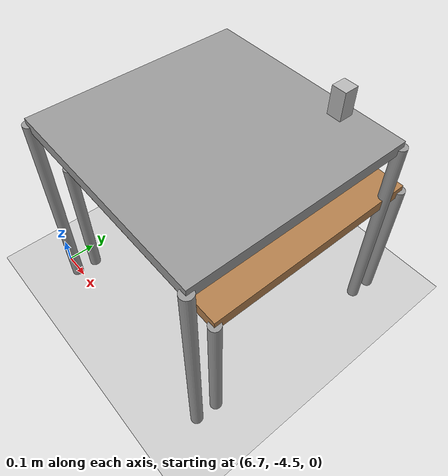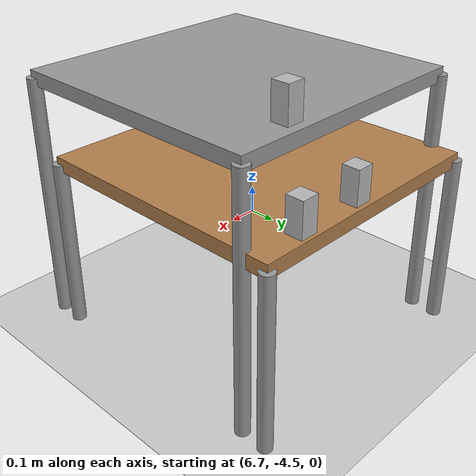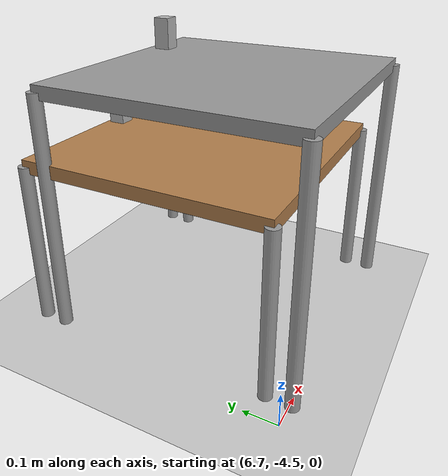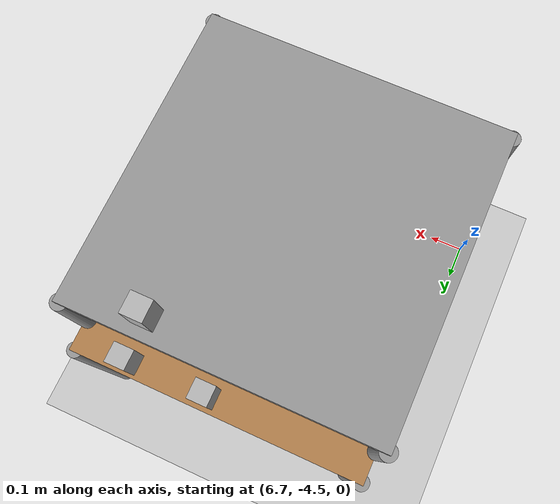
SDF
<sdf version="1.6">
 <world name="default">
  <model name="ground_plane">
   <static>1</static>
   <link name="link">
    <collision name="collision">
     <geometry><plane><normal>0 0 1</normal><size>100 100</size></plane></geometry>
     <surface>
      <contact><collide_bitmask>65535</collide_bitmask></contact>
      <friction><ode><mu>100</mu><mu2>50</mu2></ode></friction>
     </surface>
    </collision>
    <visual name="visual">
     <cast_shadows>0</cast_shadows>
     <geometry><plane><normal>0 0 1</normal><size>100 100</size></plane></geometry>
     <material>
      <script><uri>file://media/materials/scripts/gazebo.material</uri><name>Gazebo/Grey</name></script>
     </material>
    </visual>
   </link>
  </model>
  <model name="table_clone">
   <static>1</static>
   <link name="link">
    <collision name="surface">
     <pose>0 0 0.5 0 -0 0</pose>
     <geometry><box><size>0.75 0.75 0.04</size></box></geometry>
    </collision>
    <visual name="visual1">
     <pose>0 0 0.5 0 -0 0</pose>
     <geometry><box><size>0.75 0.75 0.04</size></box></geometry>
     <material>
      <script><uri>file://media/materials/scripts/gazebo.material</uri><name>Gazebo/Wood</name></script>
     </material>
    </visual>
    <collision name="front_left_leg">
     <pose>0.37 0.37 0.25 0 -0 0</pose>
     <geometry><cylinder><radius>0.02</radius><length>0.5</length></cylinder></geometry>
    </collision>
    <visual name="front_left_leg">
     <pose>0.37 0.37 0.25 0 -0 0</pose>
     <geometry><cylinder><radius>0.02</radius><length>0.5</length></cylinder></geometry>
     <material>
      <script><uri>file://media/materials/scripts/gazebo.material</uri><name>Gazebo/Grey</name></script>
     </material>
    </visual>
    <collision name="front_right_leg">
     <pose>0.37 -0.37 0.25 0 -0 0</pose>
     <geometry><cylinder><radius>0.02</radius><length>0.5</length></cylinder></geometry>
    </collision>
    <visual name="front_right_leg">
     <pose>0.37 -0.37 0.25 0 -0 0</pose>
     <geometry><cylinder><radius>0.02</radius><length>0.5</length></cylinder></geometry>
     <material>
      <script><uri>file://media/materials/scripts/gazebo.material</uri><name>Gazebo/Grey</name></script>
     </material>
    </visual>
    <collision name="back_right_leg">
     <pose>-0.37 -0.37 0.25 0 -0 0</pose>
     <geometry><cylinder><radius>0.02</radius><length>0.5</length></cylinder></geometry>
    </collision>
    <visual name="back_right_leg">
     <pose>-0.37 -0.37 0.25 0 -0 0</pose>
     <geometry><cylinder><radius>0.02</radius><length>0.5</length></cylinder></geometry>
     <material>
      <script><uri>file://media/materials/scripts/gazebo.material</uri><name>Gazebo/Grey</name></script>
     </material>
    </visual>
    <collision name="back_left_leg">
     <pose>-0.37 0.37 0.25 0 -0 0</pose>
     <geometry><cylinder><radius>0.02</radius><length>0.5</length></cylinder></geometry>
    </collision>
    <visual name="back_left_leg">
     <pose>-0.37 0.37 0.25 0 -0 0</pose>
     <geometry><cylinder><radius>0.02</radius><length>0.5</length></cylinder></geometry>
     <material>
      <script><uri>file://media/materials/scripts/gazebo.material</uri><name>Gazebo/Grey</name></script>
     </material>
    </visual>
    <velocity_decay><linear>0</linear><angular>0</angular></velocity_decay>
   </link>
   <pose>7.14247 -4.06144 0 0 -0 0</pose>
  </model>
  <model name="aruco_cube_0">
   <static>0</static>
   <link name="link">
    <inertial>
     <mass>0.05</mass>
     <inertia>
      <ixx>5.2083e-05</ixx>
      <ixy>0</ixy>
      <ixz>0</ixz>
      <iyy>5.2083e-05</iyy>
      <iyz>0</iyz>
      <izz>2.0833e-05</izz>
     </inertia>
    </inertial>
    <collision name="colision">
     <geometry><box><size>0.05 0.05 0.1</size></box></geometry>
     <surface>
      <friction><ode><mu>30</mu><mu2>30</mu2><fdir1>0 0 0</fdir1></ode></friction>
      <contact><ode><kp>1e+06</kp><kd>100</kd><min_depth>0.0025</min_depth><max_vel>1</max_vel></ode></contact>
     </surface>
    </collision>
    <visual name="visual1">
     <geometry>
      <mesh><uri>model://aruco_cube_2/meshes/aruco_cube_5cm.dae</uri><scale>1 1 2</scale></mesh>
     </geometry>
    </visual>
    <velocity_decay><linear>0</linear><angular>0</angular></velocity_decay>
   </link>
   <pose>7.32098 -3.81338 0.7875 0 -0 7e-06</pose>
  </model>
  <model name="aruco_cube_4">
   <static>0</static>
   <link name="link">
    <inertial>
     <mass>0.05</mass>
     <inertia>
      <ixx>5.2083e-05</ixx>
      <ixy>0</ixy>
      <ixz>0</ixz>
      <iyy>5.2083e-05</iyy>
      <iyz>0</iyz>
      <izz>2.0833e-05</izz>
     </inertia>
    </inertial>
    <collision name="colision">
     <geometry><box><size>0.05 0.05 0.1</size></box></geometry>
     <surface>
      <friction><ode><mu>30</mu><mu2>30</mu2><fdir1>0 0 0</fdir1></ode></friction>
      <contact><ode><kp>1e+06</kp><kd>100</kd><min_depth>0.0025</min_depth><max_vel>1</max_vel></ode></contact>
     </surface>
    </collision>
    <visual name="visual1">
     <geometry>
      <mesh><uri>model://aruco_cube_5/meshes/aruco_cube_5cm.dae</uri><scale>1 1 2</scale></mesh>
     </geometry>
    </visual>
    <velocity_decay><linear>0</linear><angular>0</angular></velocity_decay>
   </link>
   <pose>7.17401 -3.72321 0.5675 0 -0 0</pose>
  </model>
  <model name="aruco_cube_3">
   <static>0</static>
   <link name="link">
    <inertial>
     <mass>0.05</mass>
     <inertia>
      <ixx>5.2083e-05</ixx>
      <ixy>0</ixy>
      <ixz>0</ixz>
      <iyy>5.2083e-05</iyy>
      <iyz>0</iyz>
      <izz>2.0833e-05</izz>
     </inertia>
    </inertial>
    <collision name="colision">
     <geometry><box><size>0.05 0.05 0.1</size></box></geometry>
     <surface>
      <friction><ode><mu>30</mu><mu2>30</mu2><fdir1>0 0 0</fdir1></ode></friction>
      <contact><ode><kp>1e+06</kp><kd>100</kd><min_depth>0.0025</min_depth><max_vel>1</max_vel></ode></contact>
     </surface>
    </collision>
    <visual name="visual1">
     <geometry>
      <mesh><uri>model://aruco_cube_0/meshes/aruco_cube_5cm.dae</uri><scale>1 1 2</scale></mesh>
     </geometry>
    </visual>
    <velocity_decay><linear>0</linear><angular>0</angular></velocity_decay>
   </link>
   <pose>7.3737 -3.72035 0.5675 0 -0 0</pose>
  </model>
  <model name="table_0">
   <static>1</static>
   <link name="link">
    <collision name="surface">
     <pose>0 0 0.72 0 -0 0</pose>
     <geometry><box><size>0.75 0.75 0.04</size></box></geometry>
    </collision>
    <visual name="visual1">
     <pose>0 0 0.72 0 -0 0</pose>
     <geometry><box><size>0.75 0.75 0.04</size></box></geometry>
     <material>
      <script><uri>file://media/materials/scripts/gazebo.material</uri><name>Gazebo/Grey</name></script>
     </material>
    </visual>
    <collision name="front_left_leg">
     <pose>0.37 0.37 0.36 0 -0 0</pose>
     <geometry><cylinder><radius>0.02</radius><length>0.72</length></cylinder></geometry>
    </collision>
    <visual name="front_left_leg">
     <pose>0.37 0.37 0.36 0 -0 0</pose>
     <geometry><cylinder><radius>0.02</radius><length>0.72</length></cylinder></geometry>
     <material>
      <script><uri>file://media/materials/scripts/gazebo.material</uri><name>Gazebo/Grey</name></script>
     </material>
    </visual>
    <collision name="front_right_leg">
     <pose>0.37 -0.37 0.36 0 -0 0</pose>
     <geometry><cylinder><radius>0.02</radius><length>0.72</length></cylinder></geometry>
    </collision>
    <visual name="front_right_leg">
     <pose>0.37 -0.37 0.36 0 -0 0</pose>
     <geometry><cylinder><radius>0.02</radius><length>0.72</length></cylinder></geometry>
     <material>
      <script><uri>file://media/materials/scripts/gazebo.material</uri><name>Gazebo/Grey</name></script>
     </material>
    </visual>
    <collision name="back_right_leg">
     <pose>-0.37 -0.37 0.36 0 -0 0</pose>
     <geometry><cylinder><radius>0.02</radius><length>0.72</length></cylinder></geometry>
    </collision>
    <visual name="back_right_leg">
     <pose>-0.37 -0.37 0.36 0 -0 0</pose>
     <geometry><cylinder><radius>0.02</radius><length>0.72</length></cylinder></geometry>
     <material>
      <script><uri>file://media/materials/scripts/gazebo.material</uri><name>Gazebo/Grey</name></script>
     </material>
    </visual>
    <collision name="back_left_leg">
     <pose>-0.37 0.37 0.36 0 -0 0</pose>
     <geometry><cylinder><radius>0.02</radius><length>0.72</length></cylinder></geometry>
    </collision>
    <visual name="back_left_leg">
     <pose>-0.37 0.37 0.36 0 -0 0</pose>
     <geometry><cylinder><radius>0.02</radius><length>0.72</length></cylinder></geometry>
     <material>
      <script><uri>file://media/materials/scripts/gazebo.material</uri><name>Gazebo/Grey</name></script>
     </material>
    </visual>
    <velocity_decay><linear>0</linear><angular>0</angular></velocity_decay>
   </link>
   <pose>7.13999 -4.13696 0 0 -0 0</pose>
  </model>
 </world>
</sdf>
